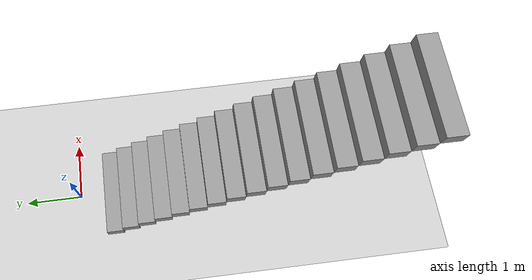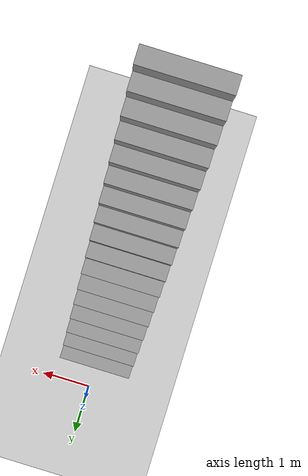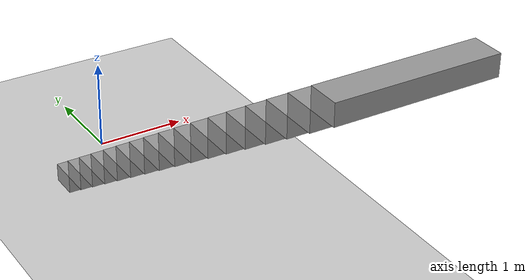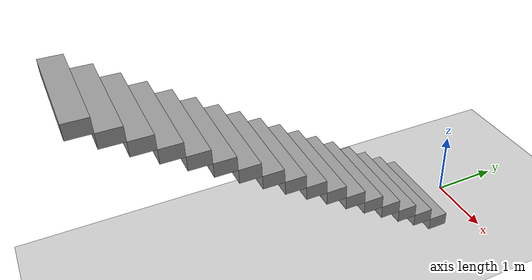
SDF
<?xml version="1.0" ?>
<sdf version="1.6">
  <world name="default">
  <gravity>0 0 -9.81</gravity>
  <physics name="ode_400iters" type="ode" default="true">
    <!-- the combination of 2 params below provides real time factor speed for simulation -->
    <!-- max_real_time_factor = real_time_update_rate * max_step_size -->
    <!-- min_real_time_factor depends only from max_step_size -->
    <real_time_update_rate>1000</real_time_update_rate>
    <max_step_size>0.002</max_step_size>
      <ode>
        <solver>
          <type>quick</type>
          <iters>900</iters>
          <!-- sor is number for more accurate results of convergence (сходимость)-->
           <sor>0.9</sor>
        </solver>
        <constraints>
      </constraints>
      </ode>
    </physics>
    <include>
      <uri>model://strirus_gazebo/maps/Ground_plane</uri>
    </include>
    <include>
      <uri>model://sun</uri>
    </include>
        <include>
		<uri>model://strirus_gazebo/maps/Ladder</uri>
      <name>Terrain</name>
      <pose>0 -3 0 0 0 0</pose>
    </include>
  </world>
</sdf>

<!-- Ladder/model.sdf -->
<sdf version='1.6'>
  <model name='Ladder'>
    <pose frame=''>0 -2.75 0 0 -0 0</pose>
    <link name='Stairs_1'>
      <visual name='Stairs_1_Visual_0'>
        <pose frame=''>0 2.4 0.1 0 -0 0</pose>
        <geometry>
          <box>
            <size>1.5 0.3 0.2</size>
          </box>
        </geometry>
        <material>
          <script>
            <uri>file://media/materials/scripts/gazebo.material</uri>
            <name>Gazebo/Grey</name>
          </script>
          <ambient>1 1 1 1</ambient>
        </material>
        <meta>
          <layer>0</layer>
        </meta>
      </visual>
      <collision name='Stairs_1_Collision_0'>
        <geometry>
          <box>
            <size>1.5 0.3 0.2</size>
          </box>
        </geometry>
        <pose frame=''>0 2.4 0.1 0 -0 0</pose>
      </collision>
      <visual name='Stairs_1_Visual_1'>
        <pose frame=''>0 2.1 0.3 0 -0 0</pose>
        <geometry>
          <box>
            <size>1.5 0.3 0.2</size>
          </box>
        </geometry>
        <material>
          <script>
            <uri>file://media/materials/scripts/gazebo.material</uri>
            <name>Gazebo/Grey</name>
          </script>
          <ambient>1 1 1 1</ambient>
        </material>
        <meta>
          <layer>0</layer>
        </meta>
      </visual>
      <collision name='Stairs_1_Collision_1'>
        <geometry>
          <box>
            <size>1.5 0.3 0.2</size>
          </box>
        </geometry>
        <pose frame=''>0 2.1 0.3 0 -0 0</pose>
      </collision>
      <visual name='Stairs_1_Visual_2'>
        <pose frame=''>0 1.8 0.5 0 -0 0</pose>
        <geometry>
          <box>
            <size>1.5 0.3 0.2</size>
          </box>
        </geometry>
        <material>
          <script>
            <uri>file://media/materials/scripts/gazebo.material</uri>
            <name>Gazebo/Grey</name>
          </script>
          <ambient>1 1 1 1</ambient>
        </material>
        <meta>
          <layer>0</layer>
        </meta>
      </visual>
      <collision name='Stairs_1_Collision_2'>
        <geometry>
          <box>
            <size>1.5 0.3 0.2</size>
          </box>
        </geometry>
        <pose frame=''>0 1.8 0.5 0 -0 0</pose>
      </collision>
      <visual name='Stairs_1_Visual_3'>
        <pose frame=''>0 1.5 0.7 0 -0 0</pose>
        <geometry>
          <box>
            <size>1.5 0.3 0.2</size>
          </box>
        </geometry>
        <material>
          <script>
            <uri>file://media/materials/scripts/gazebo.material</uri>
            <name>Gazebo/Grey</name>
          </script>
          <ambient>1 1 1 1</ambient>
        </material>
        <meta>
          <layer>0</layer>
        </meta>
      </visual>
      <collision name='Stairs_1_Collision_3'>
        <geometry>
          <box>
            <size>1.5 0.3 0.2</size>
          </box>
        </geometry>
        <pose frame=''>0 1.5 0.7 0 -0 0</pose>
      </collision>
      <visual name='Stairs_1_Visual_4'>
        <pose frame=''>0 1.2 0.9 0 -0 0</pose>
        <geometry>
          <box>
            <size>1.5 0.3 0.2</size>
          </box>
        </geometry>
        <material>
          <script>
            <uri>file://media/materials/scripts/gazebo.material</uri>
            <name>Gazebo/Grey</name>
          </script>
          <ambient>1 1 1 1</ambient>
        </material>
        <meta>
          <layer>0</layer>
        </meta>
      </visual>
      <collision name='Stairs_1_Collision_4'>
        <geometry>
          <box>
            <size>1.5 0.3 0.2</size>
          </box>
        </geometry>
        <pose frame=''>0 1.2 0.9 0 -0 0</pose>
      </collision>
      <visual name='Stairs_1_Visual_5'>
        <pose frame=''>0 0.9 1.1 0 -0 0</pose>
        <geometry>
          <box>
            <size>1.5 0.3 0.2</size>
          </box>
        </geometry>
        <material>
          <script>
            <uri>file://media/materials/scripts/gazebo.material</uri>
            <name>Gazebo/Grey</name>
          </script>
          <ambient>1 1 1 1</ambient>
        </material>
        <meta>
          <layer>0</layer>
        </meta>
      </visual>
      <collision name='Stairs_1_Collision_5'>
        <geometry>
          <box>
            <size>1.5 0.3 0.2</size>
          </box>
        </geometry>
        <pose frame=''>0 0.9 1.1 0 -0 0</pose>
      </collision>
      <visual name='Stairs_1_Visual_6'>
        <pose frame=''>0 0.6 1.3 0 -0 0</pose>
        <geometry>
          <box>
            <size>1.5 0.3 0.2</size>
          </box>
        </geometry>
        <material>
          <script>
            <uri>file://media/materials/scripts/gazebo.material</uri>
            <name>Gazebo/Grey</name>
          </script>
          <ambient>1 1 1 1</ambient>
        </material>
        <meta>
          <layer>0</layer>
        </meta>
      </visual>
      <collision name='Stairs_1_Collision_6'>
        <geometry>
          <box>
            <size>1.5 0.3 0.2</size>
          </box>
        </geometry>
        <pose frame=''>0 0.6 1.3 0 -0 0</pose>
      </collision>
      <visual name='Stairs_1_Visual_7'>
        <pose frame=''>0 0.3 1.5 0 -0 0</pose>
        <geometry>
          <box>
            <size>1.5 0.3 0.2</size>
          </box>
        </geometry>
        <material>
          <script>
            <uri>file://media/materials/scripts/gazebo.material</uri>
            <name>Gazebo/Grey</name>
          </script>
          <ambient>1 1 1 1</ambient>
        </material>
        <meta>
          <layer>0</layer>
        </meta>
      </visual>
      <collision name='Stairs_1_Collision_7'>
        <geometry>
          <box>
            <size>1.5 0.3 0.2</size>
          </box>
        </geometry>
        <pose frame=''>0 0.3 1.5 0 -0 0</pose>
      </collision>
      <visual name='Stairs_1_Visual_8'>
        <pose frame=''>0 -0 1.7 0 -0 0</pose>
        <geometry>
          <box>
            <size>1.5 0.3 0.2</size>
          </box>
        </geometry>
        <material>
          <script>
            <uri>file://media/materials/scripts/gazebo.material</uri>
            <name>Gazebo/Grey</name>
          </script>
          <ambient>1 1 1 1</ambient>
        </material>
        <meta>
          <layer>0</layer>
        </meta>
      </visual>
      <collision name='Stairs_1_Collision_8'>
        <geometry>
          <box>
            <size>1.5 0.3 0.2</size>
          </box>
        </geometry>
        <pose frame=''>0 -0 1.7 0 -0 0</pose>
      </collision>
      <visual name='Stairs_1_Visual_9'>
        <pose frame=''>0 -0.3 1.9 0 -0 0</pose>
        <geometry>
          <box>
            <size>1.5 0.3 0.2</size>
          </box>
        </geometry>
        <material>
          <script>
            <uri>file://media/materials/scripts/gazebo.material</uri>
            <name>Gazebo/Grey</name>
          </script>
          <ambient>1 1 1 1</ambient>
        </material>
        <meta>
          <layer>0</layer>
        </meta>
      </visual>
      <collision name='Stairs_1_Collision_9'>
        <geometry>
          <box>
            <size>1.5 0.3 0.2</size>
          </box>
        </geometry>
        <pose frame=''>0 -0.3 1.9 0 -0 0</pose>
      </collision>
      <visual name='Stairs_1_Visual_10'>
        <pose frame=''>0 -0.6 2.1 0 -0 0</pose>
        <geometry>
          <box>
            <size>1.5 0.3 0.2</size>
          </box>
        </geometry>
        <material>
          <script>
            <uri>file://media/materials/scripts/gazebo.material</uri>
            <name>Gazebo/Grey</name>
          </script>
          <ambient>1 1 1 1</ambient>
        </material>
        <meta>
          <layer>0</layer>
        </meta>
      </visual>
      <collision name='Stairs_1_Collision_10'>
        <geometry>
          <box>
            <size>1.5 0.3 0.2</size>
          </box>
        </geometry>
        <pose frame=''>0 -0.6 2.1 0 -0 0</pose>
      </collision>
      <visual name='Stairs_1_Visual_11'>
        <pose frame=''>0 -0.9 2.3 0 -0 0</pose>
        <geometry>
          <box>
            <size>1.5 0.3 0.2</size>
          </box>
        </geometry>
        <material>
          <script>
            <uri>file://media/materials/scripts/gazebo.material</uri>
            <name>Gazebo/Grey</name>
          </script>
          <ambient>1 1 1 1</ambient>
        </material>
        <meta>
          <layer>0</layer>
        </meta>
      </visual>
      <collision name='Stairs_1_Collision_11'>
        <geometry>
          <box>
            <size>1.5 0.3 0.2</size>
          </box>
        </geometry>
        <pose frame=''>0 -0.9 2.3 0 -0 0</pose>
      </collision>
      <visual name='Stairs_1_Visual_12'>
        <pose frame=''>0 -1.2 2.5 0 -0 0</pose>
        <geometry>
          <box>
            <size>1.5 0.3 0.2</size>
          </box>
        </geometry>
        <material>
          <script>
            <uri>file://media/materials/scripts/gazebo.material</uri>
            <name>Gazebo/Grey</name>
          </script>
          <ambient>1 1 1 1</ambient>
        </material>
        <meta>
          <layer>0</layer>
        </meta>
      </visual>
      <collision name='Stairs_1_Collision_12'>
        <geometry>
          <box>
            <size>1.5 0.3 0.2</size>
          </box>
        </geometry>
        <pose frame=''>0 -1.2 2.5 0 -0 0</pose>
      </collision>
      <visual name='Stairs_1_Visual_13'>
        <pose frame=''>0 -1.5 2.7 0 -0 0</pose>
        <geometry>
          <box>
            <size>1.5 0.3 0.2</size>
          </box>
        </geometry>
        <material>
          <script>
            <uri>file://media/materials/scripts/gazebo.material</uri>
            <name>Gazebo/Grey</name>
          </script>
          <ambient>1 1 1 1</ambient>
        </material>
        <meta>
          <layer>0</layer>
        </meta>
      </visual>
      <collision name='Stairs_1_Collision_13'>
        <geometry>
          <box>
            <size>1.5 0.3 0.2</size>
          </box>
        </geometry>
        <pose frame=''>0 -1.5 2.7 0 -0 0</pose>
      </collision>
      <visual name='Stairs_1_Visual_14'>
        <pose frame=''>0 -1.8 2.9 0 -0 0</pose>
        <geometry>
          <box>
            <size>1.5 0.3 0.2</size>
          </box>
        </geometry>
        <material>
          <script>
            <uri>file://media/materials/scripts/gazebo.material</uri>
            <name>Gazebo/Grey</name>
          </script>
          <ambient>1 1 1 1</ambient>
        </material>
        <meta>
          <layer>0</layer>
        </meta>
      </visual>
      <collision name='Stairs_1_Collision_14'>
        <geometry>
          <box>
            <size>1.5 0.3 0.2</size>
          </box>
        </geometry>
        <pose frame=''>0 -1.8 2.9 0 -0 0</pose>
      </collision>
      <visual name='Stairs_1_Visual_15'>
        <pose frame=''>0 -2.1 3.1 0 -0 0</pose>
        <geometry>
          <box>
            <size>1.5 0.3 0.2</size>
          </box>
        </geometry>
        <material>
          <script>
            <uri>file://media/materials/scripts/gazebo.material</uri>
            <name>Gazebo/Grey</name>
          </script>
          <ambient>1 1 1 1</ambient>
        </material>
        <meta>
          <layer>0</layer>
        </meta>
      </visual>
      <collision name='Stairs_1_Collision_15'>
        <geometry>
          <box>
            <size>1.5 0.3 0.2</size>
          </box>
        </geometry>
        <pose frame=''>0 -2.1 3.1 0 -0 0</pose>
      </collision>
      <visual name='Stairs_1_Visual_16'>
        <pose frame=''>0 -2.4 3.3 0 -0 0</pose>
        <geometry>
          <box>
            <size>1.5 0.3 0.2</size>
          </box>
        </geometry>
        <material>
          <script>
            <uri>file://media/materials/scripts/gazebo.material</uri>
            <name>Gazebo/Grey</name>
          </script>
          <ambient>1 1 1 1</ambient>
        </material>
        <meta>
          <layer>0</layer>
        </meta>
      </visual>
      <collision name='Stairs_1_Collision_16'>
        <geometry>
          <box>
            <size>1.5 0.3 0.2</size>
          </box>
        </geometry>
        <pose frame=''>0 -2.4 3.3 0 -0 0</pose>
      </collision>
    </link>
    <static>1</static>
  </model>
</sdf>
